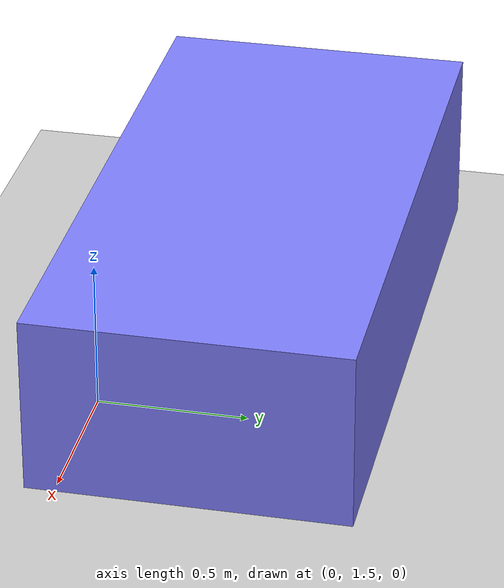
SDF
<?xml version="1.0" ?>
<sdf version="1.6">
  <world name="mecanum_drive">

    <physics name="1ms" type="ignored">
      <max_step_size>0.001</max_step_size>
      <real_time_factor>1.0</real_time_factor>
    </physics>
    <plugin
      filename="ignition-gazebo-physics-system"
      name="ignition::gazebo::systems::Physics">
    </plugin>
    <plugin
      filename="ignition-gazebo-user-commands-system"
      name="ignition::gazebo::systems::UserCommands">
    </plugin>
    <plugin
      filename="ignition-gazebo-scene-broadcaster-system"
      name="ignition::gazebo::systems::SceneBroadcaster">
    </plugin>

    <light type="directional" name="sun">
      <cast_shadows>true</cast_shadows>
      <pose>0 0 10 0 0 0</pose>
      <diffuse>1 1 1 1</diffuse>
      <specular>0.5 0.5 0.5 1</specular>
      <attenuation>
        <range>1000</range>
        <constant>0.9</constant>
        <linear>0.01</linear>
        <quadratic>0.001</quadratic>
      </attenuation>
      <direction>-0.5 0.1 -0.9</direction>
    </light>

    <model name="ground_plane">
      <static>true</static>
      <link name="link">
        <collision name="collision">
          <geometry>
            <plane>
              <normal>0 0 1</normal>
              <size>100 100</size>
            </plane>
          </geometry>
          <surface>
            <friction>
              <ode>
                <mu>50</mu>
              </ode>
            </friction>
          </surface>
        </collision>
        <visual name="visual">
          <geometry>
            <plane>
              <normal>0 0 1</normal>
              <size>100 100</size>
            </plane>
          </geometry>
          <material>
            <ambient>0.8 0.8 0.8 1</ambient>
            <diffuse>0.8 0.8 0.8 1</diffuse>
            <specular>0.8 0.8 0.8 1</specular>
          </material>
        </visual>
      </link>
    </model>

    <model name='vehicle_blue' xmlns:ignition="http://ignitionrobotics.org/schema">
      <pose>0 2 0.325 0 -0 0</pose>

      <link name='chassis'>
        <pose>-0.151427 -0 0.175 0 -0 0</pose>
        <inertial>
          <mass>1.14395</mass>
          <inertia>
            <ixx>0.126164</ixx>
            <ixy>0</ixy>
            <ixz>0</ixz>
            <iyy>0.416519</iyy>
            <iyz>0</iyz>
            <izz>0.481014</izz>
          </inertia>
        </inertial>
        <visual name='visual'>
          <geometry>
            <box>
              <size>2.01142 1 0.568726</size>
            </box>
          </geometry>
          <material>
            <ambient>0.5 0.5 1.0 1</ambient>
            <diffuse>0.5 0.5 1.0 1</diffuse>
            <specular>0.0 0.0 1.0 1</specular>
          </material>
        </visual>
        <collision name='collision'>
          <geometry>
            <box>
              <size>2.01142 1 0.568726</size>
            </box>
          </geometry>
        </collision>
      </link>

      <link name='front_left_wheel'>
        <pose>0.554283 0.625029 -0.025 -1.5707 0 0</pose>
        <inertial>
          <mass>2</mass>
          <inertia>
            <ixx>0.145833</ixx>
            <ixy>0</ixy>
            <ixz>0</ixz>
            <iyy>0.145833</iyy>
            <iyz>0</iyz>
            <izz>0.125</izz>
          </inertia>
        </inertial>
        <visual name='visual'>
        </visual>
        <collision name='collision'>
          <geometry>
            <sphere>
              <radius>0.3</radius>
            </sphere>
          </geometry>
          <surface>
            <friction>
              <ode>
                <mu>1.0</mu>
                <mu2>0.0</mu2>
                <fdir1 ignition:expressed_in="chassis">1 -1 0</fdir1>
              </ode>
            </friction>
          </surface>
        </collision>
      </link>

      <link name='rear_left_wheel'>
        <pose>-0.957138 0.625029 -0.025 -1.5707 0 0</pose>
        <inertial>
          <mass>2</mass>
          <inertia>
            <ixx>0.145833</ixx>
            <ixy>0</ixy>
            <ixz>0</ixz>
            <iyy>0.145833</iyy>
            <iyz>0</iyz>
            <izz>0.125</izz>
          </inertia>
        </inertial>
        <visual name='visual'>
        </visual>
        <collision name='collision'>
          <geometry>
            <sphere>
              <radius>0.3</radius>
            </sphere>
          </geometry>
          <surface>
            <friction>
              <ode>
                <mu>1.0</mu>
                <mu2>0.0</mu2>
                <fdir1 ignition:expressed_in="chassis">1 1 0</fdir1>
              </ode>
            </friction>
          </surface>
        </collision>
      </link>

      <link name='front_right_wheel'>
        <pose>0.554282 -0.625029 -0.025 -1.5707 0 0</pose>
        <inertial>
          <mass>2</mass>
          <inertia>
            <ixx>0.145833</ixx>
            <ixy>0</ixy>
            <ixz>0</ixz>
            <iyy>0.145833</iyy>
            <iyz>0</iyz>
            <izz>0.125</izz>
          </inertia>
        </inertial>
        <visual name='visual'>
        </visual>
        <collision name='collision'>
          <geometry>
            <sphere>
              <radius>0.3</radius>
            </sphere>
          </geometry>
          <surface>
            <friction>
              <ode>
                <mu>1.0</mu>
                <mu2>0.0</mu2>
                <fdir1 ignition:expressed_in="chassis">1 1 0</fdir1>
              </ode>
            </friction>
          </surface>
        </collision>
      </link>

      <link name='rear_right_wheel'>
        <pose>-0.957138 -0.625029 -0.025 -1.5707 0 0</pose>
        <inertial>
          <mass>2</mass>
          <inertia>
            <ixx>0.145833</ixx>
            <ixy>0</ixy>
            <ixz>0</ixz>
            <iyy>0.145833</iyy>
            <iyz>0</iyz>
            <izz>0.125</izz>
          </inertia>
        </inertial>
        <visual name='visual'>
        </visual>
        <collision name='collision'>
          <geometry>
            <sphere>
              <radius>0.3</radius>
            </sphere>
          </geometry>
          <surface>
            <friction>
              <ode>
                <mu>1.0</mu>
                <mu2>0.0</mu2>
                <fdir1 ignition:expressed_in="chassis">1 -1 0</fdir1>
              </ode>
            </friction>
          </surface>
        </collision>
      </link>

      <joint name='front_left_wheel_joint' type='revolute'>
        <parent>chassis</parent>
        <child>front_left_wheel</child>
        <axis>
          <xyz>0 0 1</xyz>
          <limit>
            <lower>-1.79769e+308</lower>
            <upper>1.79769e+308</upper>
          </limit>
        </axis>
      </joint>

      <joint name='front_right_wheel_joint' type='revolute'>
        <parent>chassis</parent>
        <child>front_right_wheel</child>
        <axis>
          <xyz>0 0 1</xyz>
          <limit>
            <lower>-1.79769e+308</lower>
            <upper>1.79769e+308</upper>
          </limit>
        </axis>
      </joint>

      <joint name='rear_left_wheel_joint' type='revolute'>
        <parent>chassis</parent>
        <child>rear_left_wheel</child>
        <axis>
          <xyz>0 0 1</xyz>
          <limit>
            <lower>-1.79769e+308</lower>
            <upper>1.79769e+308</upper>
          </limit>
        </axis>
      </joint>

      <joint name='rear_right_wheel_joint' type='revolute'>
        <parent>chassis</parent>
        <child>rear_right_wheel</child>
        <axis>
          <xyz>0 0 1</xyz>
          <limit>
            <lower>-1.79769e+308</lower>
            <upper>1.79769e+308</upper>
          </limit>
        </axis>
      </joint>

      <plugin
        filename="ignition-gazebo-mecanum-drive-system"
        name="ignition::gazebo::systems::MecanumDrive">
        <front_left_joint>front_left_wheel_joint</front_left_joint>
        <front_right_joint>front_right_wheel_joint</front_right_joint>
        <back_left_joint>rear_left_wheel_joint</back_left_joint>
        <back_right_joint>rear_right_wheel_joint</back_right_joint>
        <wheel_separation>1.25</wheel_separation>
        <wheelbase>1.511</wheelbase>
        <wheel_radius>0.3</wheel_radius>
        <min_acceleration>-5</min_acceleration>
        <max_acceleration>5</max_acceleration>
      </plugin>

    </model>

  </world>
</sdf>
